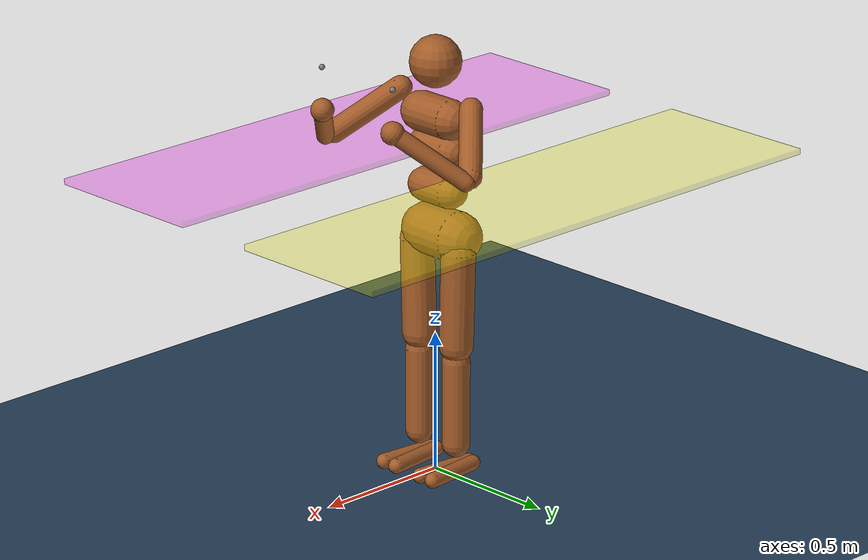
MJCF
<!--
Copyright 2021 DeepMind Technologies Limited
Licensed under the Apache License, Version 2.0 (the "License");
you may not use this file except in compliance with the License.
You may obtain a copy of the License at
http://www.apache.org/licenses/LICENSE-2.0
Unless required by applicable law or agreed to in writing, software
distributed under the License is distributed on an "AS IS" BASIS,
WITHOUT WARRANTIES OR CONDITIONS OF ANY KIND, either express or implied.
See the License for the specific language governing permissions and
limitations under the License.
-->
<mujoco model="Humanoid">
    <option timestep="0.005"/>

    <visual>
        <map force="0.1" zfar="30"/>
        <rgba haze="0.15 0.25 0.35 1"/>
        <global offwidth="2560" offheight="1440" elevation="-20" azimuth="120"/>
    </visual>

    <statistic center="0 0 0.7"/>

    <asset>
        <texture type="skybox" builtin="gradient" rgb1=".3 .5 .7" rgb2="0 0 0" width="32" height="512"/>
        <texture name="body" type="cube" builtin="flat" mark="cross" width="128" height="128" rgb1="0.8 0.6 0.4" rgb2="0.8 0.6 0.4" markrgb="1 1 1"/>
        <material name="body" texture="body" texuniform="true" rgba="0.8 0.6 .4 1"/>
        <texture name="grid" type="2d" builtin="checker" width="512" height="512" rgb1=".1 .2 .3" rgb2=".2 .3 .4"/>
        <material name="grid" texture="grid" texrepeat="1 1" texuniform="true" reflectance=".2"/>
    </asset>

    <default>
        <motor ctrlrange="-1 1" ctrllimited="true"/>
        <default class="body">

            <!-- geoms -->
            <geom type="capsule" condim="1" friction=".7" solimp=".9 .99 .003" solref=".015 1" material="body" group="1"/>
            <default class="thigh">
                <geom size=".06"/>
            </default>
            <default class="shin">
                <geom fromto="0 0 0 0 0 -.3" size=".049"/>
            </default>
            <default class="foot">
                <geom size=".027"/>
                <default class="foot1">
                    <geom fromto="-.07 -.01 0 .14 -.03 0"/>
                </default>
                <default class="foot2">
                    <geom fromto="-.07 .01 0 .14  .03 0"/>
                </default>
            </default>
            <default class="arm_upper">
                <geom size=".04"/>
            </default>
            <default class="arm_lower">
                <geom size=".031"/>
            </default>
            <default class="hand">
                <geom type="sphere" size=".04"/>
            </default>

            <!-- joints -->
            <joint type="hinge" damping=".2" stiffness="1" armature=".01" limited="true" solimplimit="0 .99 .01"/>
            <default class="joint_big">
                <joint damping="5" stiffness="10"/>
                <default class="hip_x">
                    <joint range="-30 10"/>
                </default>
                <default class="hip_z">
                    <joint range="-60 35"/>
                </default>
                <default class="hip_y">
                    <joint axis="0 1 0" range="-150 20"/>
                </default>
                <default class="joint_big_stiff">
                    <joint stiffness="20"/>
                </default>
            </default>
            <default class="knee">
                <joint pos="0 0 .02" axis="0 -1 0" range="-160 2"/>
            </default>
            <default class="ankle">
                <joint range="-50 50"/>
                <default class="ankle_y">
                    <joint pos="0 0 .08" axis="0 1 0" stiffness="6"/>
                </default>
                <default class="ankle_x">
                    <joint pos="0 0 .04" stiffness="3"/>
                </default>
            </default>
            <default class="shoulder">
                <joint range="-85 60"/>
            </default>
            <default class="elbow">
                <joint range="-100 50" stiffness="0"/>
            </default>
        </default>
    </default>

    <worldbody>
        <geom
            name="floor"
            size="0 0 .05"
            type="plane"
            material="grid"
            condim="3"
        />

        <!-- Lower-floor reference -->

        <!-- Look-forward reference Geoms -->

        <!-- Upward Rectangle Geoms -->

        <!-- Arm support Geoms -->
        <geom name="arm_support_left"
            type="box"
            pos="0.0 0.45 1.1"
            size="1.0 0.3 0.01"
            rgba="1 1 0 0.3"
            condim="3"/>

        <geom name="arm_support_right"
            type="box"
            pos="0.0 -0.45 1.1"
            size="1.0 0.3 0.01"
            rgba="1 0 1 0.3"
            condim="3"/>

        <light name="spotlight" mode="targetbodycom" target="torso" diffuse=".8 .8 .8" specular="0.3 0.3 0.3" pos="0 -6 4" cutoff="30"/>
        <light name="top" pos="0 0 2" mode="trackcom"/>
        <body name="torso" pos="0 0 1.282" childclass="body">
            <camera name="back" pos="-3 0 1" xyaxes="0 -1 0 1 0 2" mode="trackcom"/>
            <camera name="side" pos="0 -3 1" xyaxes="1 0 0 0 1 2" mode="trackcom"/>
            <freejoint name="root"/>
            <geom name="torso" fromto="0 -.07 0 0 .07 0" size=".07"/>
            <geom name="waist_upper" fromto="-.01 -.06 -.12 -.01 .06 -.12" size=".06"/>
            <site name="torso_imu" pos="0 0 0.15" size="0.01"/>
            <body name="head" pos="0 0 .19">
                <joint axis="1 0 0" name="neck_x" pos="0 0 -0.05" range="-45 45" type="hinge" />
                <joint axis="0 1 0" name="neck_y" pos="0 0 -0.05" range="-45 45" type="hinge" />
                <joint axis="0 0 1" name="neck_z" pos="0 0 -0.05" range="-60 60" type="hinge" />
                <geom name="head" type="sphere" size=".09"/>
                <site name="head_site" pos="0 0 0" size="0.01"/>
                <camera name="egocentric" pos=".09 0 0" xyaxes="0 -1 0 .1 0 1" fovy="80"/>
            </body>
            <body name="waist_lower" pos="-.01 0 -.26">
                <geom name="waist_lower" fromto="0 -.06 0 0 .06 0" size=".06"/>
                <joint name="abdomen_z" pos="0 0 .065" axis="0 0 1" range="-45 45" class="joint_big_stiff"/>
                <joint name="abdomen_y" pos="0 0 .065" axis="0 1 0" range="-75 30" class="joint_big"/>
                <body name="pelvis" pos="0 0 -.165">
                    <joint name="abdomen_x" pos="0 0 .1" axis="1 0 0" range="-35 35" class="joint_big"/>
                    <geom name="butt" fromto="-.02 -.07 0 -.02 .07 0" size=".09"/>
                    <site name="butt_site" pos="0 0 0.15" size="0.01"/>
                    <body name="thigh_right" pos="0 -.1 -.04">
                        <joint name="hip_x_right" axis="1 0 0" class="hip_x"/>
                        <joint name="hip_z_right" axis="0 0 1" class="hip_z"/>
                        <joint name="hip_y_right" class="hip_y"/>
                        <geom name="thigh_right" fromto="0 0 0 0 .01 -.34" class="thigh"/>
                        <body name="shin_right" pos="0 .01 -.4">
                            <joint name="knee_right" class="knee"/>
                            <geom name="shin_right" class="shin"/>
                            <site name="shin_right_site" pos="0 0 0" size="0.01"/>
                            <body name="foot_right" pos="0 0 -.39">
                                <joint name="ankle_y_right" class="ankle_y"/>
                                <joint name="ankle_x_right" class="ankle_x" axis="1 0 .5"/>
                                <geom name="foot1_right" class="foot1"/>
                                <geom name="foot2_right" class="foot2"/>
                                <site name="foot1_right_site" pos="0 0 0" size="0.01"/>
                                <site name="foot2_right_site" pos="0 0 0" size="0.01"/>
                            </body>
                        </body>
                    </body>
                    <body name="thigh_left" pos="0 .1 -.04">
                        <joint name="hip_x_left" axis="-1 0 0" class="hip_x"/>
                        <joint name="hip_z_left" axis="0 0 -1" class="hip_z"/>
                        <joint name="hip_y_left" class="hip_y"/>
                        <geom name="thigh_left" fromto="0 0 0 0 -.01 -.34" class="thigh"/>
                        <body name="shin_left" pos="0 -.01 -.4">
                            <joint name="knee_left" class="knee"/>
                            <geom name="shin_left" fromto="0 0 0 0 0 -.3" class="shin"/>
                            <site name="shin_left_site" pos="0 0 0" size="0.01"/>
                            <body name="foot_left" pos="0 0 -.39">
                                <joint name="ankle_y_left" class="ankle_y"/>
                                <joint name="ankle_x_left" class="ankle_x" axis="-1 0 -.5"/>
                                <geom name="foot1_left" class="foot1"/>
                                <geom name="foot2_left" class="foot2"/>
                                <site name="foot1_left_site" pos="0 0 0" size="0.01"/>
                                <site name="foot2_left_site" pos="0 0 0" size="0.01"/>
                            </body>
                        </body>
                    </body>
                </body>
            </body>
            <body name="upper_arm_right" pos="0 -.17 .06">
                <joint name="shoulder1_right" axis="2 1 1" class="shoulder"/>
                <joint name="shoulder2_right" axis="0 -1 1" class="shoulder"/>
                <geom name="upper_arm_right" fromto="0 0 0 .16 -.16 -.16" class="arm_upper"/>
                <body name="lower_arm_right" pos=".18 -.18 -.18">
                    <joint name="elbow_right" axis="0 -1 1" class="elbow"/>
                    <geom name="lower_arm_right" fromto=".01 .01 .01 .17 .17 .17" class="arm_lower"/>
                    <body name="hand_right" pos=".18 .18 .18">
                        <geom name="hand_right" zaxis="1 1 1" class="hand"/>
                        <site name="right_palm_imu" pos="0 0 0.15" size="0.01"/>
                    </body>
                </body>
            </body>
            <body name="upper_arm_left" pos="0 .17 .06">
                <joint name="shoulder1_left" axis="-2 1 -1" class="shoulder"/>
                <joint name="shoulder2_left" axis="0 -1 -1" class="shoulder"/>
                <geom name="upper_arm_left" fromto="0 0 0 .16 .16 -.16" class="arm_upper"/>
                <body name="lower_arm_left" pos=".18 .18 -.18">
                    <joint name="elbow_left" axis="0 -1 -1" class="elbow"/>
                    <geom name="lower_arm_left" fromto=".01 -.01 .01 .17 -.17 .17" class="arm_lower"/>
                    <body name="hand_left" pos=".18 -.18 .18">
                        <geom name="hand_left" zaxis="1 -1 1" class="hand"/>
                        <site name="left_palm_imu" pos="0 0 0.15" size="0.01"/>
                    </body>
                </body>
            </body>
        </body>
    </worldbody>

    <contact>
        <exclude body1="waist_lower" body2="thigh_right"/>
        <exclude body1="waist_lower" body2="thigh_left"/>
    </contact>

    <tendon>
        <fixed name="hamstring_right" limited="true" range="-0.3 2">
            <joint joint="hip_y_right" coef=".5"/>
            <joint joint="knee_right" coef="-.5"/>
        </fixed>
        <fixed name="hamstring_left" limited="true" range="-0.3 2">
            <joint joint="hip_y_left" coef=".5"/>
            <joint joint="knee_left" coef="-.5"/>
        </fixed>
    </tendon>

    <actuator>
        <motor name="neck_x" gear="40" joint="neck_x"/>
        <motor name="neck_y" gear="40" joint="neck_y"/>
        <motor name="neck_z" gear="40" joint="neck_z"/>
        <motor name="abdomen_z" gear="40" joint="abdomen_z"/>
        <motor name="abdomen_y" gear="40" joint="abdomen_y"/>
        <motor name="abdomen_x" gear="40" joint="abdomen_x"/>
        <motor name="hip_x_right" gear="40" joint="hip_x_right"/>
        <motor name="hip_z_right" gear="40" joint="hip_z_right"/>
        <motor name="hip_y_right" gear="120" joint="hip_y_right"/>
        <motor name="knee_right" gear="80" joint="knee_right"/>
        <motor name="ankle_y_right" gear="20" joint="ankle_y_right"/>
        <motor name="ankle_x_right" gear="20" joint="ankle_x_right"/>
        <motor name="hip_x_left" gear="40" joint="hip_x_left"/>
        <motor name="hip_z_left" gear="40" joint="hip_z_left"/>
        <motor name="hip_y_left" gear="120" joint="hip_y_left"/>
        <motor name="knee_left" gear="80" joint="knee_left"/>
        <motor name="ankle_y_left" gear="20" joint="ankle_y_left"/>
        <motor name="ankle_x_left" gear="20" joint="ankle_x_left"/>
        <motor name="shoulder1_right" gear="20" joint="shoulder1_right"/>
        <motor name="shoulder2_right" gear="20" joint="shoulder2_right"/>
        <motor name="elbow_right" gear="40" joint="elbow_right"/>
        <motor name="shoulder1_left" gear="20" joint="shoulder1_left"/>
        <motor name="shoulder2_left" gear="20" joint="shoulder2_left"/>
        <motor name="elbow_left" gear="40" joint="elbow_left"/>
    </actuator>

    <sensor>
        <accelerometer name="torso_accel" site="torso_imu"/>
        <gyro name="torso_gyro" site="torso_imu"/>
        <accelerometer name="right_palm_accel" site="right_palm_imu"/>
        <gyro name="right_palm_gyro" site="right_palm_imu"/>
        <accelerometer name="left_palm_accel" site="left_palm_imu"/>
        <gyro name="left_palm_gyro" site="left_palm_imu"/>
    </sensor>

    <keyframe>
        <key name="bowdown" qpos='0.98423 2.61065e-13 0.263815 0.20713 -3.25188e-14 0.978313 1.70153e-13 6.95298e-12 0.794305 -1.37228e-11 -4.67828e-13 -1.31716 8.75283e-14 0.0348326 0.00691859 -1.07604 -1.52654 0.0186031 -0.0686205 0.0348326 0.00691859 -1.07604 -1.52654 0.0186031 -0.0686205 0.143984 0.765592 -1.75152 0.143984 0.765592 -1.75152'/>
        <key name="sit" qpos='-0.107568 -2.85127e-16 0.423833 0.906872 2.94624e-15 0.421406 2.60104e-15 2.76979e-14 -0.795025 -9.92183e-17 -3.38097e-15 -1.31782 -5.71798e-15 0.180683 -0.516272 -2.62721 -2.74746 0.0935188 0.0396838 0.180683 -0.516272 -2.62721 -2.74746 0.0935188 0.0396838 -0.254824 0.363252 -1.11394 -0.254824 0.363252 -1.11394'/>
        <key name="fall" qpos='-0.647599 1.78652e-06 0.0858569 0.754041 -1.00048e-05 -0.656828 5.57513e-06 6.53319e-06 -0.448598 4.37734e-06 -2.70054e-05 -0.401268 1.20638e-05 -0.0063673 -0.12771 -2.62723 -2.802 -0.881743 -0.0286912 -0.00635923 -0.127717 -2.62723 -2.802 -0.881743 -0.0286947 0.943241 1.05544 0.881753 0.946528 1.05545 0.881753'/>
        <key name="arm_stretch" qpos='0.    0.    1.282 1.    0.    0.    0.    0.    0.    0.    0.    0.
 0.    0.    0.    0.    0.    0.    0.    0.    0.    0.    0.    0.
 0.    -0.785    0.    0.    -.785    0.    0.   '/>
    </keyframe>
</mujoco>
